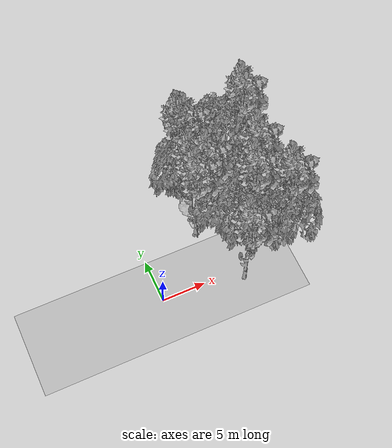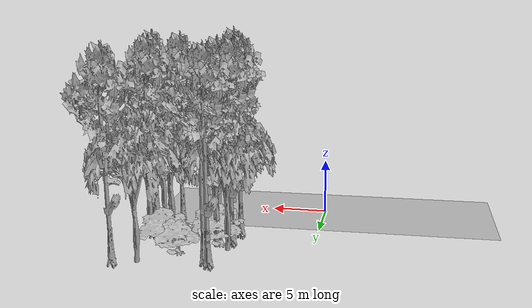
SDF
<sdf version="1.7">
 <world name="default">
  <model name="ground_plane">
   <static>1</static>
   <link name="link">
    <collision name="collision">
     <pose>-50 0 0 0 -0 0</pose>
     <geometry><plane><normal>0 0 1</normal><size>100 100</size></plane></geometry>
     <surface><contact><ode><min_depth>0.01</min_depth><max_vel>0</max_vel></ode></contact></surface>
    </collision>
    <visual name="grass">
     <cast_shadows>0</cast_shadows>
     <geometry>
      <mesh>
       <scale>0.5814285714285714 0.18142857142857144 0.1</scale>
       <uri>file://grass_plane/meshes/grass_plane.dae</uri>
      </mesh>
     </geometry>
    </visual>
   </link>
  </model>
  <model name="Tree 1">
   <static>1</static>
   <pose>7.077662777359173 8.153100355233867 0 1.57079 -0 0</pose>
   <link name="link">
    <collision name="collision">
     <geometry><mesh><scale>3.5 5 3.5</scale><uri>model://tree_9/meshes/tree_9.obj</uri></mesh></geometry>
    </collision>
    <visual name="visual">
     <geometry><mesh><scale>3.5 5 3.5</scale><uri>model://tree_9/meshes/tree_9.obj</uri></mesh></geometry>
    </visual>
   </link>
  </model>
  <model name="Tree 12">
   <static>1</static>
   <pose>15.982884441696811 2.444201014498038 0 1.57079 -0 0</pose>
   <link name="link">
    <collision name="collision">
     <geometry><mesh><scale>3.5 5 3.5</scale><uri>model://tree_9/meshes/tree_9.obj</uri></mesh></geometry>
    </collision>
    <visual name="visual">
     <geometry><mesh><scale>3.5 5 3.5</scale><uri>model://tree_9/meshes/tree_9.obj</uri></mesh></geometry>
    </visual>
   </link>
  </model>
  <model name="Tree 34">
   <static>1</static>
   <pose>12.743466793590883 8.91990275749777 0 1.57079 -0 0</pose>
   <link name="link">
    <collision name="collision">
     <geometry><mesh><scale>3 2 3</scale><uri>model://tree_3/meshes/tree_3.obj</uri></mesh></geometry>
    </collision>
    <visual name="visual">
     <geometry><mesh><scale>3 2 3</scale><uri>model://tree_3/meshes/tree_3.obj</uri></mesh></geometry>
    </visual>
   </link>
  </model>
  <model name="Tree 36">
   <static>1</static>
   <pose>6.789562346345555 10.346789086120353 0 1.57079 -0 0</pose>
   <link name="link">
    <collision name="collision">
     <geometry><mesh><scale>3.5 5 3.5</scale><uri>model://tree_2/meshes/tree_2.obj</uri></mesh></geometry>
    </collision>
    <visual name="visual">
     <geometry><mesh><scale>3.5 5 3.5</scale><uri>model://tree_2/meshes/tree_2.obj</uri></mesh></geometry>
    </visual>
   </link>
  </model>
  <model name="Tree 51">
   <static>1</static>
   <pose>15.209641283366047 0.6229678370735865 0 1.57079 -0 0</pose>
   <link name="link">
    <collision name="collision">
     <geometry><mesh><scale>3.5 5 3.5</scale><uri>model://tree_2/meshes/tree_2.obj</uri></mesh></geometry>
    </collision>
    <visual name="visual">
     <geometry><mesh><scale>3.5 5 3.5</scale><uri>model://tree_2/meshes/tree_2.obj</uri></mesh></geometry>
    </visual>
   </link>
  </model>
  <model name="Tree 60">
   <static>1</static>
   <pose>12.6266388682686 7.274243822281292 0 1.57079 -0 0</pose>
   <link name="link">
    <collision name="collision">
     <geometry><mesh><scale>3.5 5 3.5</scale><uri>model://tree_2/meshes/tree_2.obj</uri></mesh></geometry>
    </collision>
    <visual name="visual">
     <geometry><mesh><scale>3.5 5 3.5</scale><uri>model://tree_2/meshes/tree_2.obj</uri></mesh></geometry>
    </visual>
   </link>
  </model>
  <model name="Tree 86">
   <static>1</static>
   <pose>15.621878197258951 13.467448722796906 0 1.57079 -0 0</pose>
   <link name="link">
    <collision name="collision">
     <geometry><mesh><scale>3.5 5 3.5</scale><uri>model://tree_9/meshes/tree_9.obj</uri></mesh></geometry>
    </collision>
    <visual name="visual">
     <geometry><mesh><scale>3.5 5 3.5</scale><uri>model://tree_9/meshes/tree_9.obj</uri></mesh></geometry>
    </visual>
   </link>
  </model>
  <model name="Tree 146">
   <static>1</static>
   <pose>9.404753024115927 -1.1604785787961607 0 1.57079 -0 0</pose>
   <link name="link">
    <collision name="collision">
     <geometry><mesh><scale>3.5 5 3.5</scale><uri>model://tree_9/meshes/tree_9.obj</uri></mesh></geometry>
    </collision>
    <visual name="visual">
     <geometry><mesh><scale>3.5 5 3.5</scale><uri>model://tree_9/meshes/tree_9.obj</uri></mesh></geometry>
    </visual>
   </link>
  </model>
  <model name="Tree 161">
   <static>1</static>
   <pose>13.292998718451727 13.656703844743834 0 1.57079 -0 0</pose>
   <link name="link">
    <collision name="collision">
     <geometry><mesh><scale>3.5 5 3.5</scale><uri>model://tree_2/meshes/tree_2.obj</uri></mesh></geometry>
    </collision>
    <visual name="visual">
     <geometry><mesh><scale>3.5 5 3.5</scale><uri>model://tree_2/meshes/tree_2.obj</uri></mesh></geometry>
    </visual>
   </link>
  </model>
  <model name="Tree 176">
   <static>1</static>
   <pose>14.821610627850689 3.3099648002109596 0 1.57079 -0 0</pose>
   <link name="link">
    <collision name="collision">
     <geometry><mesh><scale>3.5 5 3.5</scale><uri>model://tree_2/meshes/tree_2.obj</uri></mesh></geometry>
    </collision>
    <visual name="visual">
     <geometry><mesh><scale>3.5 5 3.5</scale><uri>model://tree_2/meshes/tree_2.obj</uri></mesh></geometry>
    </visual>
   </link>
  </model>
  <model name="Tree 224">
   <static>1</static>
   <pose>9.25286384065086 4.3781490437754265 0 1.57079 -0 0</pose>
   <link name="link">
    <collision name="collision">
     <geometry><mesh><scale>3.5 5 3.5</scale><uri>model://tree_2/meshes/tree_2.obj</uri></mesh></geometry>
    </collision>
    <visual name="visual">
     <geometry><mesh><scale>3.5 5 3.5</scale><uri>model://tree_2/meshes/tree_2.obj</uri></mesh></geometry>
    </visual>
   </link>
  </model>
  <model name="Tree 231">
   <static>1</static>
   <pose>7.823467199322458 12.816507266977528 0 1.57079 -0 0</pose>
   <link name="link">
    <collision name="collision">
     <geometry><mesh><scale>3.5 5 3.5</scale><uri>model://tree_9/meshes/tree_9.obj</uri></mesh></geometry>
    </collision>
    <visual name="visual">
     <geometry><mesh><scale>3.5 5 3.5</scale><uri>model://tree_9/meshes/tree_9.obj</uri></mesh></geometry>
    </visual>
   </link>
  </model>
  <model name="Tree 246">
   <static>1</static>
   <pose>14.442908582780007 7.40007884837058 0 1.57079 -0 0</pose>
   <link name="link">
    <collision name="collision">
     <geometry><mesh><scale>3.5 5 3.5</scale><uri>model://tree_9/meshes/tree_9.obj</uri></mesh></geometry>
    </collision>
    <visual name="visual">
     <geometry><mesh><scale>3.5 5 3.5</scale><uri>model://tree_9/meshes/tree_9.obj</uri></mesh></geometry>
    </visual>
   </link>
  </model>
  <model name="Tree 253">
   <static>1</static>
   <pose>14.436739747298752 7.898832850625205 0 1.57079 -0 0</pose>
   <link name="link">
    <collision name="collision">
     <geometry><mesh><scale>3.5 5 3.5</scale><uri>model://tree_2/meshes/tree_2.obj</uri></mesh></geometry>
    </collision>
    <visual name="visual">
     <geometry><mesh><scale>3.5 5 3.5</scale><uri>model://tree_2/meshes/tree_2.obj</uri></mesh></geometry>
    </visual>
   </link>
  </model>
  <model name="Tree 265">
   <static>1</static>
   <pose>6.799052289421013 6.152843729656457 0 1.57079 -0 0</pose>
   <link name="link">
    <collision name="collision">
     <geometry><mesh><scale>3.5 5 3.5</scale><uri>model://tree_9/meshes/tree_9.obj</uri></mesh></geometry>
    </collision>
    <visual name="visual">
     <geometry><mesh><scale>3.5 5 3.5</scale><uri>model://tree_9/meshes/tree_9.obj</uri></mesh></geometry>
    </visual>
   </link>
  </model>
  <model name="Tree 305">
   <static>1</static>
   <pose>7.897555620901137 9.778602186168122 0 1.57079 -0 0</pose>
   <link name="link">
    <collision name="collision">
     <geometry><mesh><scale>3.5 5 3.5</scale><uri>model://tree_2/meshes/tree_2.obj</uri></mesh></geometry>
    </collision>
    <visual name="visual">
     <geometry><mesh><scale>3.5 5 3.5</scale><uri>model://tree_2/meshes/tree_2.obj</uri></mesh></geometry>
    </visual>
   </link>
  </model>
  <model name="Tree 349">
   <static>1</static>
   <pose>11.241328846149067 1.2379613217274468 0 1.57079 -0 0</pose>
   <link name="link">
    <collision name="collision">
     <geometry><mesh><scale>3.5 5 3.5</scale><uri>model://tree_2/meshes/tree_2.obj</uri></mesh></geometry>
    </collision>
    <visual name="visual">
     <geometry><mesh><scale>3.5 5 3.5</scale><uri>model://tree_2/meshes/tree_2.obj</uri></mesh></geometry>
    </visual>
   </link>
  </model>
  <model name="Tree 385">
   <static>1</static>
   <pose>12.68544421784901 4.44726329846096 0 1.57079 -0 0</pose>
   <link name="link">
    <collision name="collision">
     <geometry><mesh><scale>3.5 5 3.5</scale><uri>model://tree_9/meshes/tree_9.obj</uri></mesh></geometry>
    </collision>
    <visual name="visual">
     <geometry><mesh><scale>3.5 5 3.5</scale><uri>model://tree_9/meshes/tree_9.obj</uri></mesh></geometry>
    </visual>
   </link>
  </model>
  <model name="Tree 400">
   <static>1</static>
   <pose>10.682046204110605 11.507461834271947 0 1.57079 -0 0</pose>
   <link name="link">
    <collision name="collision">
     <geometry><mesh><scale>4 2.5 4</scale><uri>model://tree_1/meshes/tree_1.obj</uri></mesh></geometry>
    </collision>
    <visual name="visual">
     <geometry><mesh><scale>4 2.5 4</scale><uri>model://tree_1/meshes/tree_1.obj</uri></mesh></geometry>
    </visual>
   </link>
  </model>
  <model name="Tree 488">
   <static>1</static>
   <pose>8.55491286965976 7.469691394981009 0 1.57079 -0 0</pose>
   <link name="link">
    <collision name="collision">
     <geometry><mesh><scale>3.5 5 3.5</scale><uri>model://tree_9/meshes/tree_9.obj</uri></mesh></geometry>
    </collision>
    <visual name="visual">
     <geometry><mesh><scale>3.5 5 3.5</scale><uri>model://tree_9/meshes/tree_9.obj</uri></mesh></geometry>
    </visual>
   </link>
  </model>
  <model name="Tree 489">
   <static>1</static>
   <pose>8.742141748571449 6.9548640850788 0 1.57079 -0 0</pose>
   <link name="link">
    <collision name="collision">
     <geometry><mesh><scale>3 2 3</scale><uri>model://tree_3/meshes/tree_3.obj</uri></mesh></geometry>
    </collision>
    <visual name="visual">
     <geometry><mesh><scale>3 2 3</scale><uri>model://tree_3/meshes/tree_3.obj</uri></mesh></geometry>
    </visual>
   </link>
  </model>
  <model name="Tree 509">
   <static>1</static>
   <pose>7.718059347810026 9.378789275680823 0 1.57079 -0 0</pose>
   <link name="link">
    <collision name="collision">
     <geometry><mesh><scale>4 2.5 4</scale><uri>model://tree_1/meshes/tree_1.obj</uri></mesh></geometry>
    </collision>
    <visual name="visual">
     <geometry><mesh><scale>4 2.5 4</scale><uri>model://tree_1/meshes/tree_1.obj</uri></mesh></geometry>
    </visual>
   </link>
  </model>
  <model name="Tree 531">
   <static>1</static>
   <pose>8.3163994060751 12.331286961939092 0 1.57079 -0 0</pose>
   <link name="link">
    <collision name="collision">
     <geometry><mesh><scale>3.5 5 3.5</scale><uri>model://tree_9/meshes/tree_9.obj</uri></mesh></geometry>
    </collision>
    <visual name="visual">
     <geometry><mesh><scale>3.5 5 3.5</scale><uri>model://tree_9/meshes/tree_9.obj</uri></mesh></geometry>
    </visual>
   </link>
  </model>
 </world>
</sdf>
